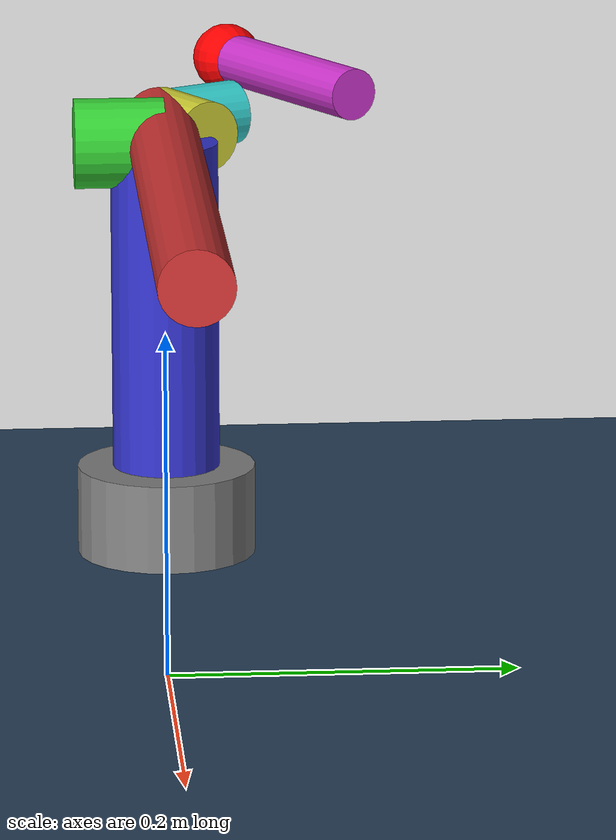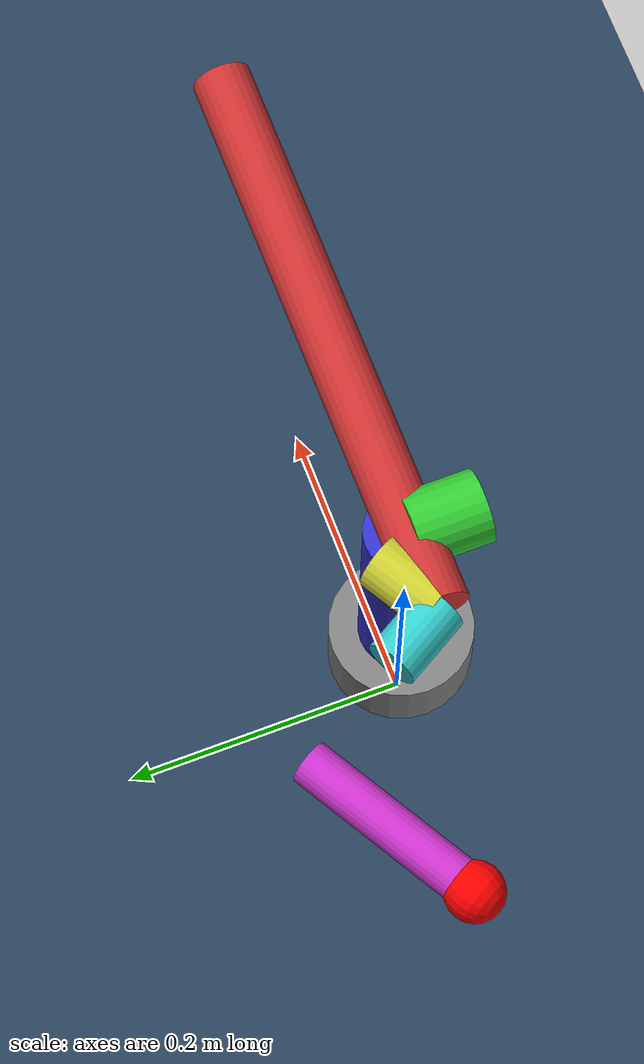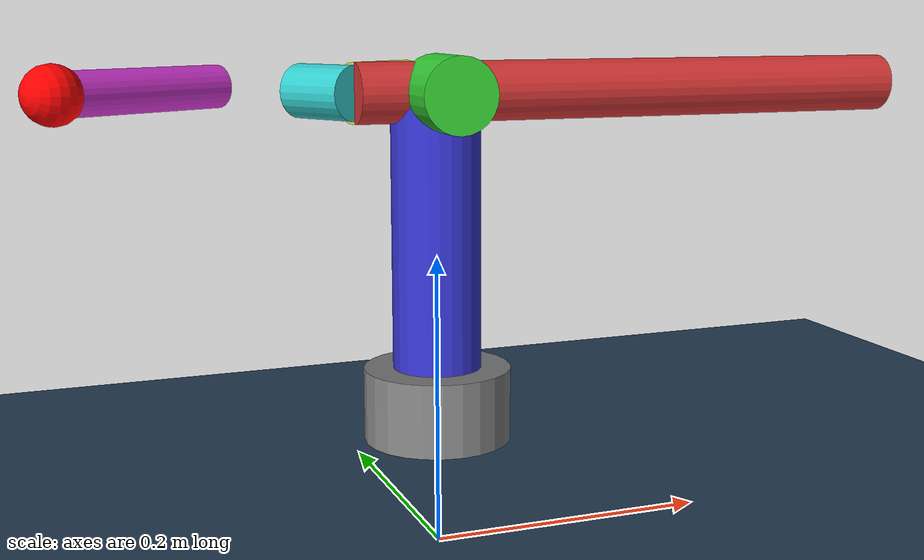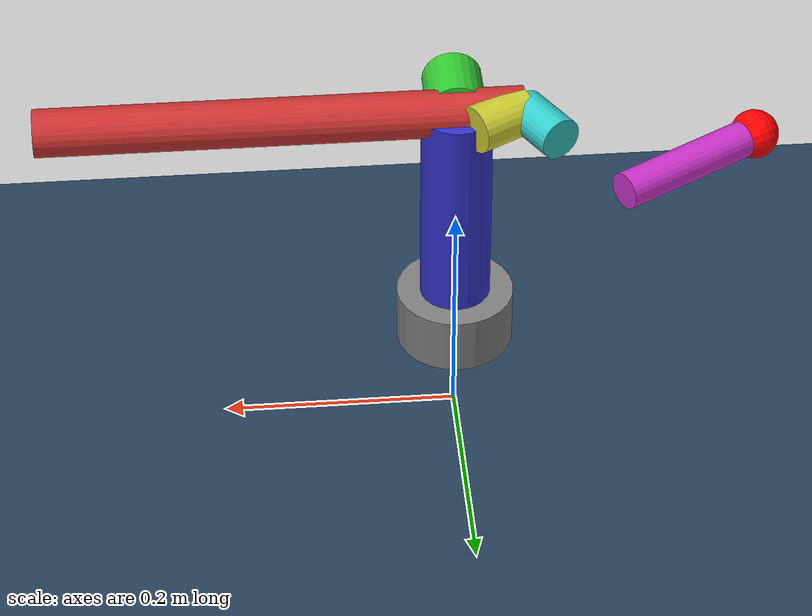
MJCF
<mujoco model="cable_manipulator_scene">
  <compiler angle="radian" meshdir="." autolimits="true"/>

  <option gravity="0 0 -9.81" timestep="0.001"/>

  <visual>
    <headlight diffuse="0.6 0.6 0.6" ambient="0.3 0.3 0.3" specular="0 0 0"/>
    <rgba haze="0.15 0.25 0.35 1"/>
    <global azimuth="120" elevation="-20"/>
  </visual>

  <asset>
    <texture type="skybox" builtin="gradient" rgb1="0.3 0.5 0.7" rgb2="0 0 0" width="512" height="512"/>
    <texture name="groundplane" type="2d" builtin="checker" rgb1="0.2 0.3 0.4" rgb2="0.1 0.2 0.3" width="512" height="512" mark="edge" markrgb="0.8 0.8 0.8"/>
    <material name="groundplane" texture="groundplane" texrepeat="5 5" texuniform="true" reflectance="0.2"/>
  </asset>

  <worldbody>
    <light pos="0 0 3" dir="0 0 -1" directional="false" diffuse="0.8 0.8 0.8" specular="0.2 0.2 0.2"/>
    <light pos="2 2 3" dir="-1 -1 -1" directional="false" diffuse="0.4 0.4 0.4" specular="0.1 0.1 0.1"/>
    <light pos="-2 2 3" dir="1 -1 -1" directional="false" diffuse="0.4 0.4 0.4" specular="0.1 0.1 0.1"/>

    <geom name="floor" pos="0 0 0" size="5 5 0.1" type="plane" material="groundplane"/>

    <body name="base_link" pos="0 0 0.1">
      <geom type="cylinder" size="0.05 0.025" rgba="0.5 0.5 0.5 1"/>
      <inertial pos="0 0 0" mass="1.0" diaginertia="0.01 0.01 0.01"/>

      <body name="link1" pos="0 0 0.21">
        <joint name="joint1" type="hinge" axis="0 0 1" range="-3.14159 3.14159" damping="0.1"/>
        <geom type="cylinder" size="0.03 0.105" pos="0 0 -0.105" rgba="0.2 0.2 0.8 1"/>
        <inertial pos="0 0 -0.105" mass="0.5" diaginertia="0.002 0.002 0.0005"/>

        <body name="link2" pos="0 0 0" quat="0.7071 0.7071 0 0">
          <joint name="joint2" type="hinge" axis="0 0 1" range="-3.14159 3.14159" damping="0.1"/>
          <geom type="cylinder" size="0.025 0.025" pos="0 0 0.025" rgba="0.2 0.8 0.2 1"/>
          <inertial pos="0 0 0.025" mass="0.3" diaginertia="0.0005 0.0005 0.0002"/>

          <body name="link3" pos="-0.055 0 0" quat="0.5 0.5 0.5 0.5">
            <joint name="joint3" type="slide" axis="0 0 1" range="0.2 3.0" damping="1.0"/>
            <geom type="cylinder" size="0.02 0.2" pos="0 0 0.2" rgba="0.8 0.2 0.2 1"/>
            <inertial pos="0 0 0.2" mass="0.188" diaginertia="0.003 0.003 0.0001"/>

            <body name="link4" pos="0 0 0" quat="0.9659 0.2588 0 0">
              <joint name="joint4" type="hinge" axis="0 0 1" range="-3.14159 3.14159" damping="0.05"/>
              <geom type="cylinder" size="0.02 0.025" pos="0 0 0.025" rgba="0.8 0.8 0.2 1"/>
              <inertial pos="0 0 0.025" mass="0.2" diaginertia="0.0003 0.0003 0.0001"/>

              <body name="link5" pos="0 0 0" quat="0.7071 0.7071 0 0">
                <joint name="joint5" type="hinge" axis="0 0 1" range="-3.14159 3.14159" damping="0.05"/>
                <geom type="cylinder" size="0.018 0.025" pos="0 0 0.025" rgba="0.2 0.8 0.8 1"/>
                <inertial pos="0 0 0.025" mass="0.15" diaginertia="0.0002 0.0002 0.0001"/>

                <body name="link6" pos="0 0 0.133" quat="0.7071 0.7071 0 0">
                  <joint name="joint6" type="hinge" axis="0 0 1" range="-3.14159 3.14159" damping="0.05"/>
                  <geom type="cylinder" size="0.015 0.0665" pos="0 0 0.0665" rgba="0.8 0.2 0.8 1"/>
                  <inertial pos="0 0 0.0665" mass="0.5" diaginertia="0.003 0.003 0.0001"/>

                  <!-- End effector site -->
                  <site name="ee_site" pos="0 0 0.133" size="0.02" rgba="1 0 0 1"/>
                </body>
              </body>
            </body>
          </body>
        </body>
      </body>
    </body>
  </worldbody>

  <actuator>
    <position name="actuator_joint1" joint="joint1" kp="100" ctrlrange="-3.14159 3.14159"/>
    <position name="actuator_joint2" joint="joint2" kp="100" ctrlrange="-3.14159 3.14159"/>
    <position name="actuator_joint3" joint="joint3" kp="1000" ctrlrange="0.2 3.0"/>
    <position name="actuator_joint4" joint="joint4" kp="50" ctrlrange="-3.14159 3.14159"/>
    <position name="actuator_joint5" joint="joint5" kp="50" ctrlrange="-3.14159 3.14159"/>
    <position name="actuator_joint6" joint="joint6" kp="50" ctrlrange="-3.14159 3.14159"/>
  </actuator>

  <keyframe>
    <key name="home" qpos="0 0 0.5 0 0 0" ctrl="0 0 0.5 0 0 0"/>
  </keyframe>

</mujoco>
